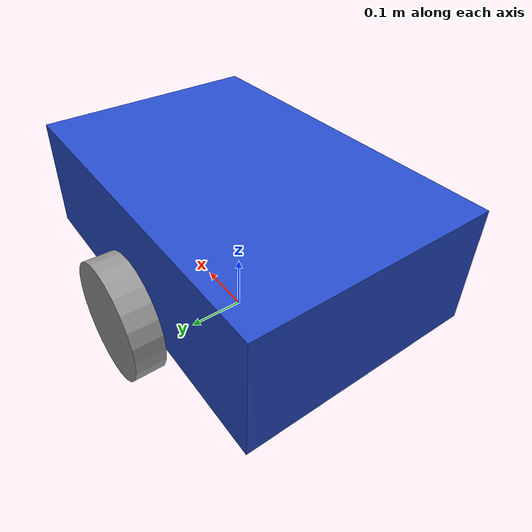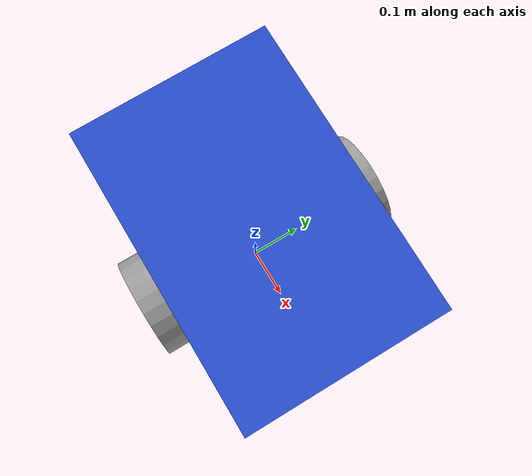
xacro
<?xml version="1.0"?>
<robot name="my_robot" xmlns:xacro="http://www.ros.org/wiki/xacro">

    <xacro:include filename="$(find mobile_base_description)/urdf/common_properties.xacro" />
    <xacro:include filename="$(find mobile_base_description)/urdf/mobile_base.xacro" />
    <xacro:include filename="$(find mobile_base_description)/urdf/mobile_base.ros2_control.xacro" />

</robot>

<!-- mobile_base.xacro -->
<robot xmlns:xacro="http://www.ros.org/wiki/xacro">

    <xacro:property name="base_length" value="0.6" />
    <xacro:property name="base_width" value="0.4" />
    <xacro:property name="base_height" value="0.2" />
    <xacro:property name="wheel_radius" value="0.1" />
    <xacro:property name="wheel_length" value="0.05" />

    <link name="base_footprint" />

    <link name="mobile_base_link">
        <visual>
            <geometry>
                <box size="${base_length} ${base_width} ${base_height}" />
            </geometry>
            <origin xyz="0 0 ${base_height / 2.0}" rpy="0 0 0" />
            <material name="blue" />
        </visual>
        <collision>
            <geometry>
                <box size="${base_length} ${base_width} ${base_height}" />
            </geometry>
            <origin xyz="0 0 ${base_height / 2.0}" rpy="0 0 0" />
        </collision>
        <inertial>
            <origin xyz="0 0 ${base_height / 2.0}" rpy="0 0 0" />
            <mass value="5.0" />
            <inertia
                ixx="${(1/12.0) * 5.0 * (base_width**2  + base_height**2)}"
                ixy="0" ixz="0"
                iyy="${(1/12.0) * 5.0 * (base_length**2 + base_height**2)}"
                iyz="0"
                izz="${(1/12.0) * 5.0 * (base_length**2 + base_width**2)}" />
        </inertial>
    </link>

    <xacro:macro name="wheel_link" params="prefix">
        <link name="${prefix}_wheel_link">
            <visual>
                <geometry>
                    <cylinder radius="${wheel_radius}" length="${wheel_length}" />
                </geometry>
                <origin xyz="0 0 0" rpy="${pi / 2.0} 0 0" />
                <material name="grey" />
            </visual>
            <collision>
                <geometry>
                    <cylinder radius="${wheel_radius}" length="${wheel_length}" />
                </geometry>
                <origin xyz="0 0 0" rpy="${pi / 2.0} 0 0" />
            </collision>
            <inertial>
                <origin xyz="0 0 0" rpy="${pi / 2.0} 0 0" />
                <mass value="0.5" />
                <inertia
                    ixx="${(1/12.0) * 0.5 * (3 * wheel_radius**2 + wheel_length**2)}"
                    ixy="0" ixz="0"
                    iyy="${(1/12.0) * 0.5 * (3 * wheel_radius**2 + wheel_length**2)}"
                    iyz="0"
                    izz="${0.5 * 0.5 * wheel_radius**2}" />
            </inertial>
        </link>
    </xacro:macro>

    <xacro:wheel_link prefix="right" />
    <xacro:wheel_link prefix="left" />

    <link name="caster_wheel_link">
        <visual>
            <geometry>
                <sphere radius="${wheel_radius / 2.0}" />
            </geometry>
            <origin xyz="0 0 0" rpy="0 0 0" />
            <material name="grey" />
        </visual>
        <collision>
            <geometry>
                <sphere radius="${wheel_radius / 2.0}" />
            </geometry>
            <origin xyz="0 0 0" rpy="0 0 0" />
        </collision>
        <inertial>
            <origin xyz="0 0 0" rpy="0 0 0" />
            <mass value="0.1" />
            <inertia
                ixx="${(2/5.0) * 0.1 * (wheel_radius / 2.0)**2}"
                ixy="0" ixz="0"
                iyy="${(2/5.0) * 0.1 * (wheel_radius / 2.0)**2}"
                iyz="0"
                izz="${(2/5.0) * 0.1 * (wheel_radius / 2.0)**2}" />
        </inertial>
    </link>

    <link name="rear_caster_wheel_link">
        <visual>
            <geometry>
                <sphere radius="${wheel_radius / 2.0}" />
            </geometry>
            <origin xyz="0 0 0" rpy="0 0 0" />
            <material name="grey" />
        </visual>
        <collision>
            <geometry>
                <sphere radius="${wheel_radius / 2.0}" />
            </geometry>
            <origin xyz="0 0 0" rpy="0 0 0" />
        </collision>
        <inertial>
            <origin xyz="0 0 0" rpy="0 0 0" />
            <mass value="0.1" />
            <inertia
                ixx="${(2/5.0) * 0.1 * (wheel_radius / 2.0)**2}"
                ixy="0" ixz="0"
                iyy="${(2/5.0) * 0.1 * (wheel_radius / 2.0)**2}"
                iyz="0"
                izz="${(2/5.0) * 0.1 * (wheel_radius / 2.0)**2}" />
        </inertial>
    </link>

    <joint name="base_joint" type="fixed">
        <parent link="base_footprint" />
        <child link="mobile_base_link" />
        <origin xyz="0 0 ${wheel_radius}" rpy="0 0 0"/>
    </joint>

    <joint name="base_right_wheel_joint" type="continuous">
        <parent link="mobile_base_link" />
        <child link="right_wheel_link" />
        <origin xyz="0 ${-(base_width + wheel_length) / 2.0} 0" rpy="0 0 0" />
        <axis xyz="0 1 0" />
    </joint>

    <joint name="base_left_wheel_joint" type="continuous">
        <parent link="mobile_base_link" />
        <child link="left_wheel_link" />
        <origin xyz="0 ${(base_width + wheel_length) / 2.0} 0" rpy="0 0 0" />
        <axis xyz="0 1 0" />
    </joint>

    <joint name="base_caster_wheel_joint" type="fixed">
        <parent link="mobile_base_link" />
        <child link="caster_wheel_link" />
        <origin xyz="${base_length / 3.0} 0 ${-wheel_radius / 2.0}" rpy="0 0 0" />
    </joint>

    <joint name="base_rear_caster_wheel_joint" type="fixed">
        <parent link="mobile_base_link" />
        <child link="rear_caster_wheel_link" />
        <origin xyz="${-base_length / 3.0} 0 ${-wheel_radius / 2.0}" rpy="0 0 0" />
    </joint>

    <!-- Drive wheels: high friction so they grip the ground instead of slipping -->
    <gazebo reference="right_wheel_link">
        <mu1>10.0</mu1>
        <mu2>10.0</mu2>
        <kp>1.0e6</kp>
        <kd>1.0</kd>
        <minDepth>0.001</minDepth>
        <maxVel>0.01</maxVel>
    </gazebo>
    <gazebo reference="left_wheel_link">
        <mu1>10.0</mu1>
        <mu2>10.0</mu2>
        <kp>1.0e6</kp>
        <kd>1.0</kd>
        <minDepth>0.001</minDepth>
        <maxVel>0.01</maxVel>
    </gazebo>

    <!-- Casters: near-zero friction so they pivot freely without fighting the drive wheels -->
    <gazebo reference="caster_wheel_link">
        <mu1>0.001</mu1>
        <mu2>0.001</mu2>
    </gazebo>
    <gazebo reference="rear_caster_wheel_link">
        <mu1>0.001</mu1>
        <mu2>0.001</mu2>
    </gazebo>

</robot>
